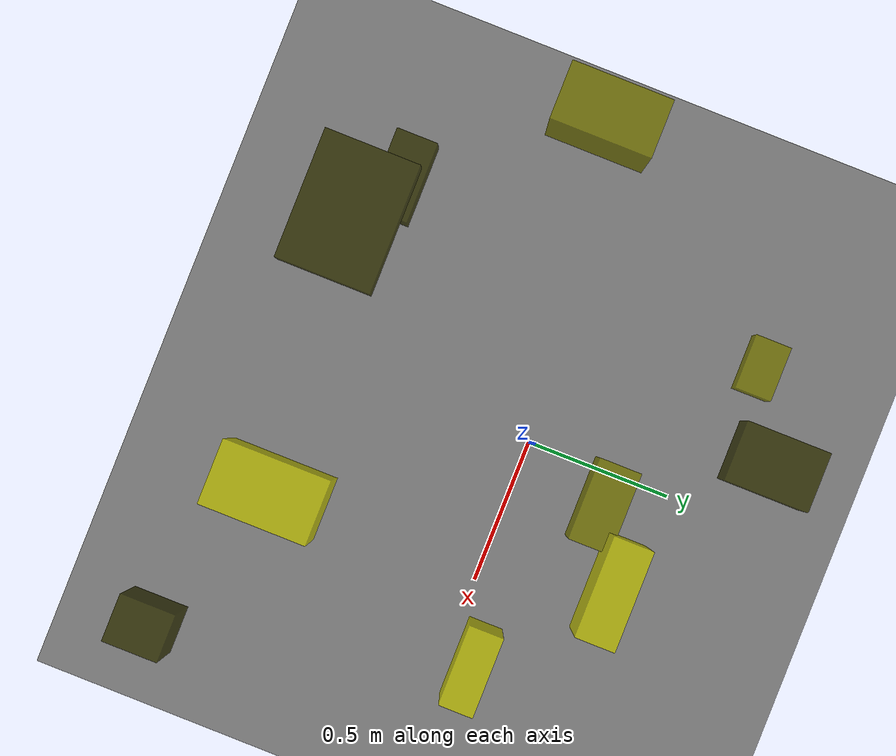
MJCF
<?xml version="1.0"?>
<mujoco model="obstacle_scene">
  <compiler angle="radian" coordinate="local"/>
  <option timestep="0.001" gravity="0 0 -9.81"/>

  <asset>
    <material name="obstacle_mat" rgba="0.8 0.8 0.0 0.8"/>
    <material name="ground_mat" rgba="0.5 0.5 0.5 1"/>
  </asset>

  <worldbody>
    <!-- Ground plane -->
    <geom name="ground" type="plane" size="3 3 0.1" material="ground_mat"/>

    <!-- Obstacles -->
    <body name="obstacle_0" pos="-0.379501 -0.707628 1.287254">
      <geom name="obs_0" type="box" size="0.178504 0.132278 0.035570" rgba="0.2 0.2 0.0 0.8"/>
    </body>
    <body name="obstacle_1" pos="0.095895 0.256358 0.539044">
      <geom name="obs_1" type="box" size="0.130377 0.066512 0.096867" rgba="0.5 0.5 0.0 0.8"/>
    </body>
    <body name="obstacle_2" pos="0.742504 0.081480 0.244080">
      <geom name="obs_2" type="box" size="0.134217 0.057855 0.129013" rgba="0.8 0.8 0.0 0.8"/>
    </body>
    <body name="obstacle_3" pos="-0.199461 0.670258 0.685255">
      <geom name="obs_3" type="box" size="0.093220 0.130734 0.073279" rgba="0.2 0.2 0.0 0.8"/>
    </body>
    <body name="obstacle_4" pos="-0.440439 0.506107 0.836254">
      <geom name="obs_4" type="box" size="0.081360 0.053434 0.041088" rgba="0.5 0.5 0.0 0.8"/>
    </body>
    <body name="obstacle_5" pos="0.414403 -0.688284 0.717250">
      <geom name="obs_5" type="box" size="0.100378 0.166319 0.126155" rgba="0.8 0.8 0.0 0.8"/>
    </body>
    <body name="obstacle_6" pos="0.931176 -0.896177 0.614014">
      <geom name="obs_6" type="box" size="0.074706 0.087452 0.111083" rgba="0.2 0.2 0.0 0.8"/>
    </body>
    <body name="obstacle_7" pos="-0.892346 -0.170239 1.101247">
      <geom name="obs_7" type="box" size="0.082406 0.143990 0.128161" rgba="0.5 0.5 0.0 0.8"/>
    </body>
    <body name="obstacle_8" pos="0.320131 0.358367 0.681028">
      <geom name="obs_8" type="box" size="0.156500 0.062073 0.126565" rgba="0.8 0.8 0.0 0.8"/>
    </body>
    <body name="obstacle_9" pos="-0.611678 -0.680806 0.504218">
      <geom name="obs_9" type="box" size="0.129295 0.066627 0.056792" rgba="0.2 0.2 0.0 0.8"/>
    </body>
  </worldbody>
</mujoco>
